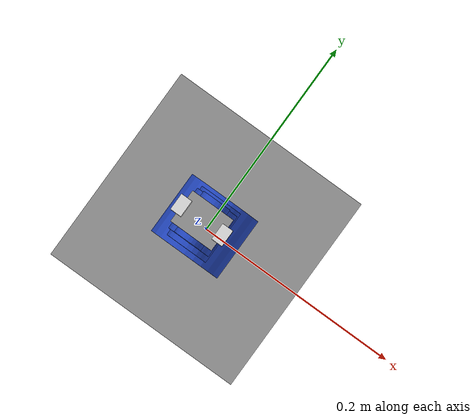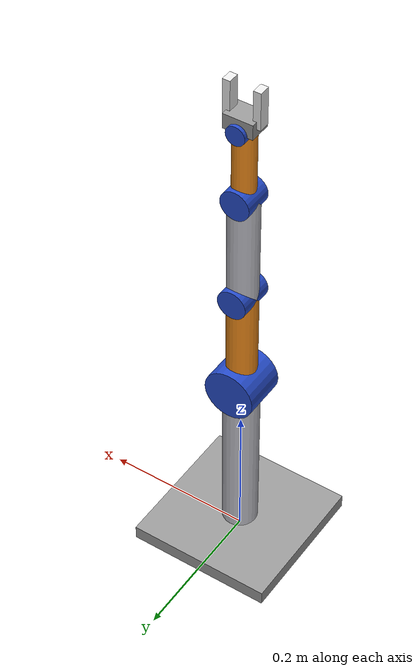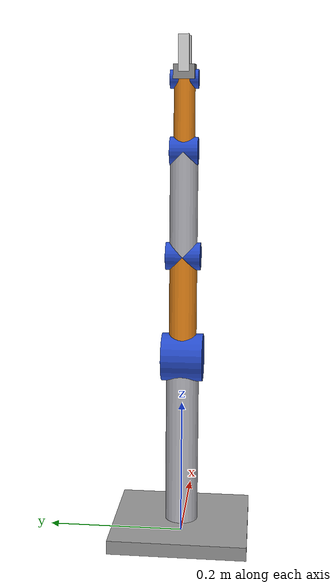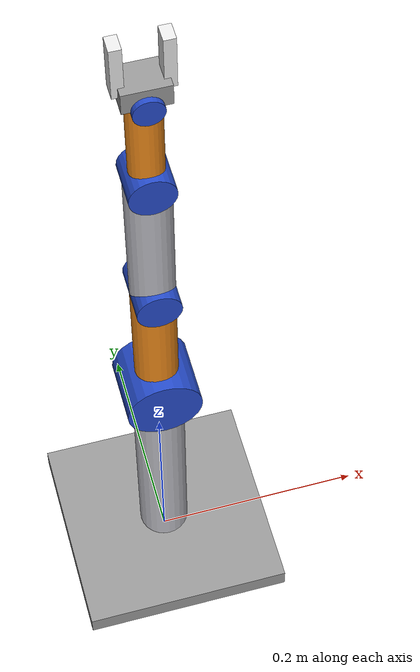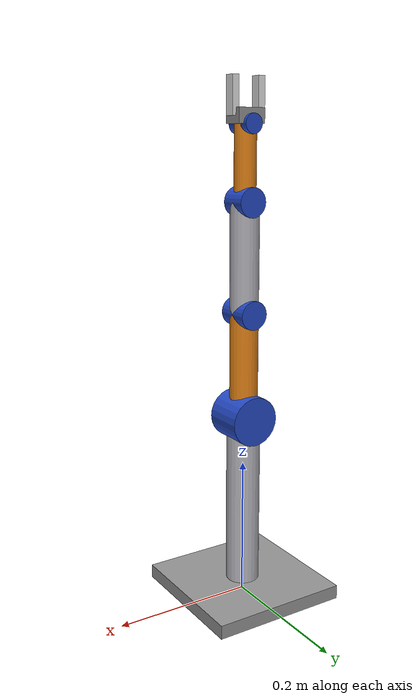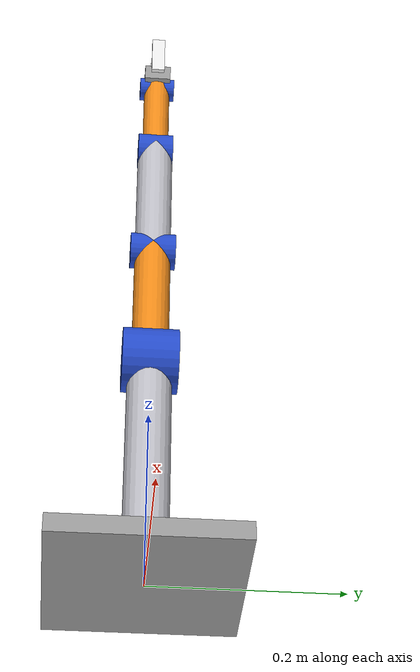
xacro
<?xml version="1.0"?>
<robot xmlns:xacro="http://www.ros.org/wiki/xacro" name="3dof_robot">
  <!-- Define PI constant -->
  <xacro:property name="PI" value="3.14159265359"/>

  <xacro:include filename="$(find robot_description)/urdf/robot_materials.xacro"/>
  <xacro:include filename="$(find robot_description)/urdf/robot_gazebo.xacro"/>
  <xacro:include filename="$(find robot_description)/urdf/robot_control.xacro"/>

  <!-- Link Parameters -->
  <xacro:property name="r1" value="0.024"/>   <!-- Base link radius -->
  <xacro:property name="r2" value="0.020"/>  <!-- Second link radius -->
  <xacro:property name="r3" value="0.020"/>   <!-- Third link radius -->
  <xacro:property name="r4" value="0.015"/>  <!-- End effector radius -->

  <xacro:property name="l1" value="0.25"/>    <!-- Base link length -->
  <xacro:property name="l2" value="0.15"/>   <!-- Second link length -->
  <xacro:property name="l3" value="0.15"/>    <!-- Third link length -->
  <xacro:property name="l4" value="0.10"/>   <!-- End effector length -->

  <xacro:property name="m1" value="0.8"/>    <!-- Base link mass -->
  <xacro:property name="m2" value="0.6"/>    <!-- Second link mass -->
  <xacro:property name="m3" value="0.4"/>    <!-- Third link mass -->
  <xacro:property name="m4" value="0.3"/>    <!-- End effector mass -->

  <!-- Joint Visual Parameters -->
  <xacro:property name="joint1_radius" value="0.035"/>
  <xacro:property name="joint2_radius" value="0.020"/>
  <xacro:property name="joint3_radius" value="0.020"/>
  <xacro:property name="joint4_radius" value="0.013"/>

  <xacro:property name="joint1_length" value="0.06"/>
  <xacro:property name="joint2_length" value="0.05"/>
  <xacro:property name="joint3_length" value="0.04"/>
  <xacro:property name="joint4_length" value="0.04"/>

  <!-- Inertia macro for solid cylinder along Z-axis -->
  <xacro:macro name="inertial_cylinder_z" params="mass radius length">
    <inertial>
      <origin xyz="0 0 ${length/2}" rpy="0 0 0"/>
      <mass value="${mass}"/>
      <inertia
        ixx="${(1/12.0)*mass*(3*radius*radius + length*length)}"
        iyy="${(1/12.0)*mass*(3*radius*radius + length*length)}"
        izz="${0.5*mass*radius*radius}"
        ixy="0" ixz="0" iyz="0"/>
    </inertial>
  </xacro:macro>

  <!-- Cylindrical Link Macro -->
  <xacro:macro name="cylinder_link" params="name mass radius length color">
    <link name="${name}">
      <xacro:inertial_cylinder_z mass="${mass}" radius="${radius}" length="${length}"/>
      <visual>
        <origin xyz="0 0 ${length/2}" rpy="0 0 0"/>
        <geometry>
          <cylinder radius="${radius}" length="${length}"/>
        </geometry>
        <material name="${color}"/>
      </visual>
      <collision>
        <origin xyz="0 0 ${length/2}" rpy="0 0 0"/>
        <geometry>
          <cylinder radius="${radius}" length="${length}"/>
        </geometry>
      </collision>
    </link>
  </xacro:macro>

  <!-- Joint Visual Macro -->
  <xacro:macro name="joint_visual" params="radius length">
    <visual>
      <origin xyz="0 0 0" rpy="0 0 0"/>
      <geometry>
        <cylinder radius="${radius}" length="${length}"/>
      </geometry>
      <material name="electric_blue"/>
    </visual>
  </xacro:macro>

  <!-- Base -->
  <link name="world"/>
  <link name="base_link">
    <visual>
      <origin xyz="0 0 0.01" rpy="0 0 0"/>
      <geometry>
        <box size="0.2 0.2 0.02"/>
      </geometry>
      <material name="sleek_gray"/>
    </visual>
    <collision>
      <origin xyz="0 0 0.01" rpy="0 0 0"/>
      <geometry>
        <box size="0.2 0.2 0.02"/>
      </geometry>
    </collision>
    <inertial>
      <origin xyz="0 0 0.01" rpy="0 0 0"/>
      <mass value="2.0"/>
      <inertia ixx="0.01" iyy="0.01" izz="0.01" ixy="0" ixz="0" iyz="0"/>
    </inertial>
  </link>

  <joint name="world_to_base" type="fixed">
    <parent link="world"/>
    <child link="base_link"/>
    <origin xyz="0 0 0" rpy="0 0 0"/>
  </joint>

  <!-- Link 1 -->
  <xacro:cylinder_link name="link_1" mass="${m1}" radius="${r1}" length="${l1}" color="metallic_silver"/>
  <joint name="base_to_link_1" type="fixed">
    <parent link="base_link"/>
    <child link="link_1"/>
    <origin xyz="0 0 0.02" rpy="0 0 0"/>
  </joint>

  <!-- Link 2 with Joint Visual -->
  <xacro:cylinder_link name="link_2" mass="${m2}" radius="${r2}" length="${l2}" color="deep_orange"/>
  <joint name="link_1_to_link_2" type="revolute">
    <parent link="link_1"/>
    <child link="link_2"/>
    <origin xyz="0 0 ${l1}" rpy="0 0 0"/>
    <axis xyz="0 1 0"/>
    <limit lower="-1.57" upper="1.57" effort="50" velocity="1.0"/>
  </joint>
  <link name="joint_1_visual">
    <xacro:joint_visual radius="${joint1_radius}" length="${joint1_length}"/>
  </link>
  <joint name="joint_1_visual_joint" type="fixed">
    <parent link="link_1"/>
    <child link="joint_1_visual"/>
    <origin xyz="0 0 ${l1}" rpy="${PI/2} 0 0"/>
  </joint>

  <!-- Link 3 with Joint Visual -->
  <xacro:cylinder_link name="link_3" mass="${m3}" radius="${r3}" length="${l3}" color="metallic_silver"/>
  <joint name="link_2_to_link_3" type="revolute">
    <parent link="link_2"/>
    <child link="link_3"/>
    <origin xyz="0 0 ${l2}" rpy="0 0 0"/>
    <axis xyz="0 1 0"/>
    <limit lower="-1.57" upper="1.57" effort="50" velocity="1.0"/>
  </joint>
  <link name="joint_2_visual">
    <xacro:joint_visual radius="${joint2_radius}" length="${joint2_length}"/>
  </link>
  <joint name="joint_2_visual_joint" type="fixed">
    <parent link="link_2"/>
    <child link="joint_2_visual"/>
    <origin xyz="0 0 ${l2}" rpy="${PI/2} 0 0"/>
  </joint>

  <!-- Link 4 with Joint Visual -->
  <xacro:cylinder_link name="link_4" mass="${m4}" radius="${r4}" length="${l4}" color="deep_orange"/>
  <joint name="link_3_to_link_4" type="revolute">
    <parent link="link_3"/>
    <child link="link_4"/>
    <origin xyz="0 0 ${l3}" rpy="0 0 0"/>
    <axis xyz="0 1 0"/>
    <limit lower="-1.57" upper="1.57" effort="50" velocity="1.0"/>
  </joint>
  <link name="joint_3_visual">
    <xacro:joint_visual radius="${joint3_radius}" length="${joint3_length}"/>
  </link>
  <joint name="joint_3_visual_joint" type="fixed">
    <parent link="link_3"/>
    <child link="joint_3_visual"/>
    <origin xyz="0 0 ${l3}" rpy="${PI/2} 0 0"/>
  </joint>

  <!-- Gripper -->
  <link name="gripper_base">
    <visual>
      <origin xyz="0 0 0.01" rpy="0 0 0"/>
      <geometry>
        <box size="0.04 0.03 0.02"/>
      </geometry>
      <material name="sleek_gray"/>
    </visual>
    <collision>
      <origin xyz="0 0 0.01" rpy="0 0 0"/>
      <geometry>
        <box size="0.04 0.03 0.02"/>
      </geometry>
    </collision>
    <inertial>
      <origin xyz="0 0 0.01" rpy="0 0 0"/>
      <mass value="0.1"/>
      <inertia ixx="1e-4" iyy="1e-4" izz="1e-4" ixy="0" ixz="0" iyz="0"/>
    </inertial>

    <!-- Fingers -->
    <visual>
      <origin xyz="0.02 0 0.035" rpy="0 0 0"/>
      <geometry>
        <box size="0.01 0.015 0.05"/>
      </geometry>
      <material name="metallic_white"/>
    </visual>
    <collision>
      <origin xyz="0.02 0 0.035" rpy="0 0 0"/>
      <geometry>
        <box size="0.01 0.015 0.05"/>
      </geometry>
    </collision>
    <visual>
      <origin xyz="-0.02 0 0.035" rpy="0 0 0"/>
      <geometry>
        <box size="0.01 0.015 0.05"/>
      </geometry>
      <material name="metallic_white"/>
    </visual>
    <collision>
      <origin xyz="-0.02 0 0.035" rpy="0 0 0"/>
      <geometry>
        <box size="0.01 0.015 0.05"/>
      </geometry>
    </collision>
  </link>

  <joint name="link_4_to_gripper" type="revolute">
    <parent link="link_4"/>
    <child link="gripper_base"/>
    <origin xyz="0 0 ${l4}" rpy="0 0 0"/>
    <axis xyz="0 1 0"/>
    <limit lower="-1.57" upper="1.57" effort="50" velocity="1.0"/>
  </joint>
  <link name="joint_4_visual">
    <xacro:joint_visual radius="${joint4_radius}" length="${joint4_length}"/>
  </link>
  <joint name="joint_4_visual_joint" type="fixed">
    <parent link="link_4"/>
    <child link="joint_4_visual"/>
    <origin xyz="0 0 ${l4}" rpy="${PI/2} 0 0"/>
  </joint>

</robot>

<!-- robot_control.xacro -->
<robot xmlns:xacro="http://www.ros.org/wiki/xacro" name="3dof_robot">
    <!-- Define PI constant -->
    <xacro:property name="PI" value="3.14159265359"/>

    <ros2_control name="RobotSystem" type="system">
        <hardware>
            <plugin>gz_ros2_control/GazeboSimSystem</plugin>
        </hardware>

        <!-- Base Joint -->
        <joint name="link_1_to_link_2">
            <command_interface name="position"/>
            <state_interface name="position"/>
            <state_interface name="velocity"/>
            <param name="initial_position">0.0</param>
        </joint>

        <!-- Shoulder Joint -->
        <joint name="link_2_to_link_3">
            <command_interface name="position"/>
            <state_interface name="position"/>
            <state_interface name="velocity"/>
            <param name="initial_position">0.0</param>
        </joint>

        <!-- Elbow Joint -->
        <joint name="link_3_to_link_4">
            <command_interface name="position"/>
            <state_interface name="position"/>
            <state_interface name="velocity"/>
            <param name="initial_position">0.0</param>
        </joint>

        <!-- Gripper Joint -->
        <joint name="link_4_to_gripper">
            <command_interface name="position"/>
            <state_interface name="position"/>
            <state_interface name="velocity"/>
            <param name="initial_position">0.0</param>
        </joint>
    </ros2_control>

    <!-- Transmissions -->
    <transmission name="link_1_to_link_2_trans">
        <type>transmission_interface/SimpleTransmission</type>
        <joint name="link_1_to_link_2">
            <hardwareInterface>hardware_interface/PositionJointInterface</hardwareInterface>
        </joint>
        <actuator name="link_1_to_link_2_motor">
            <mechanicalReduction>1</mechanicalReduction>
        </actuator>
    </transmission>

    <transmission name="link_2_to_link_3_trans">
        <type>transmission_interface/SimpleTransmission</type>
        <joint name="link_2_to_link_3">
            <hardwareInterface>hardware_interface/PositionJointInterface</hardwareInterface>
        </joint>
        <actuator name="link_2_to_link_3_motor">
            <mechanicalReduction>1</mechanicalReduction>
        </actuator>
    </transmission>

    <transmission name="link_3_to_link_4_trans">
        <type>transmission_interface/SimpleTransmission</type>
        <joint name="link_3_to_link_4">
            <hardwareInterface>hardware_interface/PositionJointInterface</hardwareInterface>
        </joint>
        <actuator name="link_3_to_link_4_motor">
            <mechanicalReduction>1</mechanicalReduction>
        </actuator>
    </transmission>

    <transmission name="link_4_to_gripper_trans">
        <type>transmission_interface/SimpleTransmission</type>
        <joint name="link_4_to_gripper">
            <hardwareInterface>hardware_interface/PositionJointInterface</hardwareInterface>
        </joint>
        <actuator name="link_4_to_gripper_motor">
            <mechanicalReduction>1</mechanicalReduction>
        </actuator>
    </transmission>

</robot>
